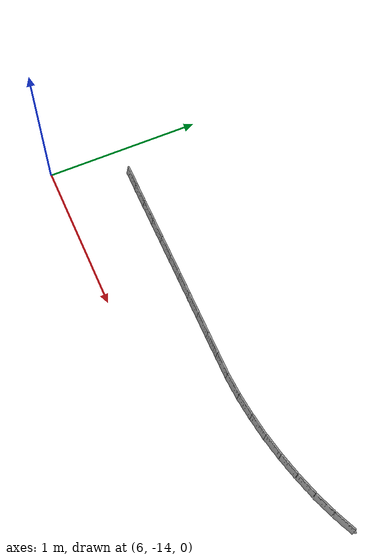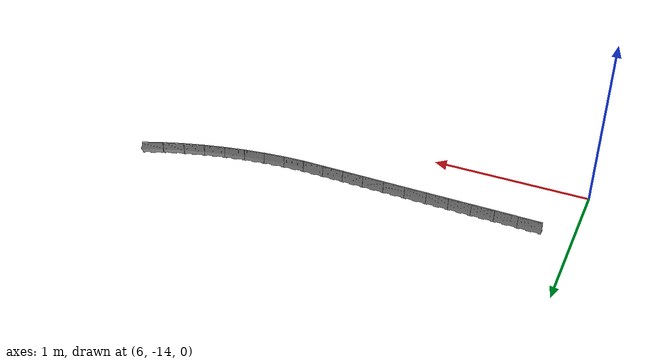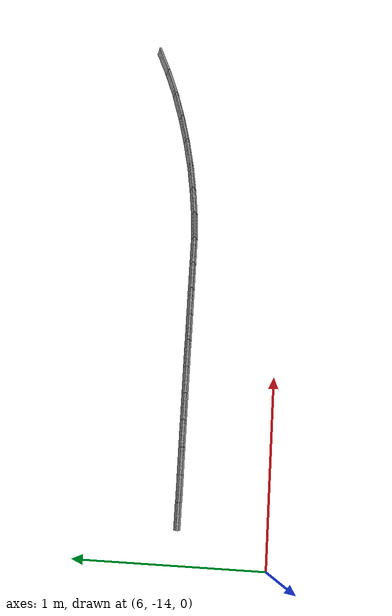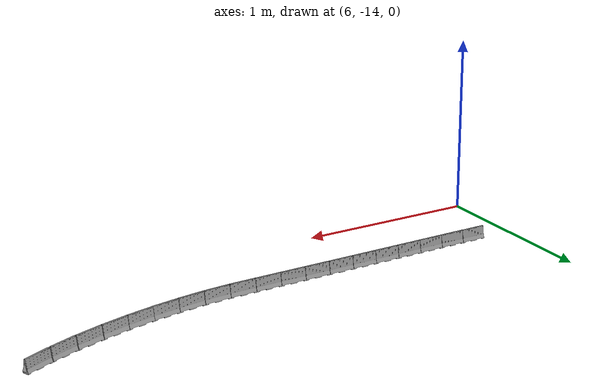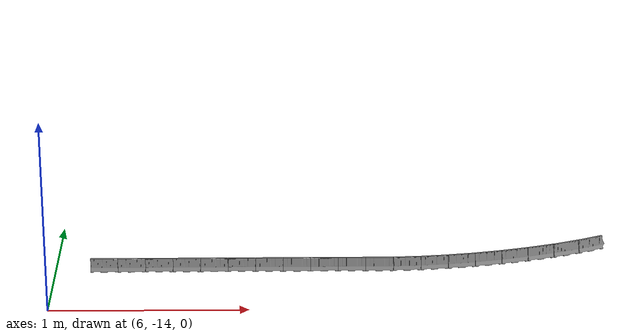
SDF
<sdf version="1.6">
 <world name="bfmc_official">
  <model name="separator_clone">
   <link name="separator::separator::link_0">
    <inertial>
     <mass>1</mass>
     <inertia>
      <ixx>0.166667</ixx>
      <ixy>0</ixy>
      <ixz>0</ixz>
      <iyy>0.166667</iyy>
      <iyz>0</iyz>
      <izz>0.166667</izz>
     </inertia>
    </inertial>
    <visual name="visual">
     <geometry><mesh><uri>model://separator/meshes/separator.dae</uri><scale>1 1 1</scale></mesh></geometry>
     <material>
      <lighting>1</lighting>
      <script><uri>file://media/materials/scripts/gazebo.material</uri><name>Gazebo/Gray</name></script>
      <shader type="vertex"><normal_map>__default__</normal_map></shader>
      <ambient>0.3 0.3 0.3 1</ambient>
      <diffuse>0.7 0.7 0.7 1</diffuse>
      <specular>0.01 0.01 0.01 1</specular>
      <emissive>0 0 0 1</emissive>
     </material>
    </visual>
    <collision name="collision">
     <geometry><mesh><uri>model://separator/meshes/separator.dae</uri><scale>1 1 1</scale></mesh></geometry>
     <surface>
      <friction>
       <ode><mu>1</mu><mu2>1</mu2><fdir1>0 0 0</fdir1><slip1>0</slip1><slip2>0</slip2></ode>
       <torsional>
        <coefficient>1</coefficient>
        <patch_radius>0</patch_radius>
        <surface_radius>0</surface_radius>
        <use_patch_radius>1</use_patch_radius>
        <ode><slip>0</slip></ode>
       </torsional>
      </friction>
      <bounce><restitution_coefficient>0</restitution_coefficient><threshold>1e+06</threshold></bounce>
      <contact>
       <collide_without_contact>0</collide_without_contact>
       <collide_without_contact_bitmask>1</collide_without_contact_bitmask>
       <collide_bitmask>1</collide_bitmask>
       <ode>
        <soft_cfm>0</soft_cfm>
        <soft_erp>0.2</soft_erp>
        <kp>1e+13</kp>
        <kd>1</kd>
        <max_vel>0.01</max_vel>
        <min_depth>0</min_depth>
       </ode>
       <bullet>
        <split_impulse>1</split_impulse>
        <split_impulse_penetration_threshold>-0.01</split_impulse_penetration_threshold>
        <soft_cfm>0</soft_cfm>
        <soft_erp>0.2</soft_erp>
        <kp>1e+13</kp>
        <kd>1</kd>
       </bullet>
      </contact>
     </surface>
    </collision>
   </link>
   <static>1</static>
   <pose>6.38806 -13.5317 0.044642 0 -0 1.57324</pose>
  </model>
  <model name="separator_clone_clone">
   <link name="separator::separator::link_0">
    <inertial>
     <mass>1</mass>
     <inertia>
      <ixx>0.166667</ixx>
      <ixy>0</ixy>
      <ixz>0</ixz>
      <iyy>0.166667</iyy>
      <iyz>0</iyz>
      <izz>0.166667</izz>
     </inertia>
    </inertial>
    <visual name="visual">
     <geometry><mesh><uri>model://separator/meshes/separator.dae</uri><scale>1 1 1</scale></mesh></geometry>
     <material>
      <lighting>1</lighting>
      <script><uri>file://media/materials/scripts/gazebo.material</uri><name>Gazebo/Gray</name></script>
      <shader type="vertex"><normal_map>__default__</normal_map></shader>
      <ambient>0.3 0.3 0.3 1</ambient>
      <diffuse>0.7 0.7 0.7 1</diffuse>
      <specular>0.01 0.01 0.01 1</specular>
      <emissive>0 0 0 1</emissive>
     </material>
    </visual>
    <collision name="collision">
     <geometry><mesh><uri>model://separator/meshes/separator.dae</uri><scale>1 1 1</scale></mesh></geometry>
     <surface>
      <friction>
       <ode><mu>1</mu><mu2>1</mu2><fdir1>0 0 0</fdir1><slip1>0</slip1><slip2>0</slip2></ode>
       <torsional>
        <coefficient>1</coefficient>
        <patch_radius>0</patch_radius>
        <surface_radius>0</surface_radius>
        <use_patch_radius>1</use_patch_radius>
        <ode><slip>0</slip></ode>
       </torsional>
      </friction>
      <bounce><restitution_coefficient>0</restitution_coefficient><threshold>1e+06</threshold></bounce>
      <contact>
       <collide_without_contact>0</collide_without_contact>
       <collide_without_contact_bitmask>1</collide_without_contact_bitmask>
       <collide_bitmask>1</collide_bitmask>
       <ode>
        <soft_cfm>0</soft_cfm>
        <soft_erp>0.2</soft_erp>
        <kp>1e+13</kp>
        <kd>1</kd>
        <max_vel>0.01</max_vel>
        <min_depth>0</min_depth>
       </ode>
       <bullet>
        <split_impulse>1</split_impulse>
        <split_impulse_penetration_threshold>-0.01</split_impulse_penetration_threshold>
        <soft_cfm>0</soft_cfm>
        <soft_erp>0.2</soft_erp>
        <kp>1e+13</kp>
        <kd>1</kd>
       </bullet>
      </contact>
     </surface>
    </collision>
   </link>
   <static>1</static>
   <pose>6.52931 -13.5311 0.044642 0 -0 1.57324</pose>
  </model>
  <model name="separator_clone_clone_clone">
   <link name="separator::separator::link_0">
    <inertial>
     <mass>1</mass>
     <inertia>
      <ixx>0.166667</ixx>
      <ixy>0</ixy>
      <ixz>0</ixz>
      <iyy>0.166667</iyy>
      <iyz>0</iyz>
      <izz>0.166667</izz>
     </inertia>
    </inertial>
    <visual name="visual">
     <geometry><mesh><uri>model://separator/meshes/separator.dae</uri><scale>1 1 1</scale></mesh></geometry>
     <material>
      <lighting>1</lighting>
      <script><uri>file://media/materials/scripts/gazebo.material</uri><name>Gazebo/Gray</name></script>
      <shader type="vertex"><normal_map>__default__</normal_map></shader>
      <ambient>0.3 0.3 0.3 1</ambient>
      <diffuse>0.7 0.7 0.7 1</diffuse>
      <specular>0.01 0.01 0.01 1</specular>
      <emissive>0 0 0 1</emissive>
     </material>
    </visual>
    <collision name="collision">
     <geometry><mesh><uri>model://separator/meshes/separator.dae</uri><scale>1 1 1</scale></mesh></geometry>
     <surface>
      <friction>
       <ode><mu>1</mu><mu2>1</mu2><fdir1>0 0 0</fdir1><slip1>0</slip1><slip2>0</slip2></ode>
       <torsional>
        <coefficient>1</coefficient>
        <patch_radius>0</patch_radius>
        <surface_radius>0</surface_radius>
        <use_patch_radius>1</use_patch_radius>
        <ode><slip>0</slip></ode>
       </torsional>
      </friction>
      <bounce><restitution_coefficient>0</restitution_coefficient><threshold>1e+06</threshold></bounce>
      <contact>
       <collide_without_contact>0</collide_without_contact>
       <collide_without_contact_bitmask>1</collide_without_contact_bitmask>
       <collide_bitmask>1</collide_bitmask>
       <ode>
        <soft_cfm>0</soft_cfm>
        <soft_erp>0.2</soft_erp>
        <kp>1e+13</kp>
        <kd>1</kd>
        <max_vel>0.01</max_vel>
        <min_depth>0</min_depth>
       </ode>
       <bullet>
        <split_impulse>1</split_impulse>
        <split_impulse_penetration_threshold>-0.01</split_impulse_penetration_threshold>
        <soft_cfm>0</soft_cfm>
        <soft_erp>0.2</soft_erp>
        <kp>1e+13</kp>
        <kd>1</kd>
       </bullet>
      </contact>
     </surface>
    </collision>
   </link>
   <static>1</static>
   <pose>6.67069 -13.5307 0.044642 0 -0 1.57324</pose>
  </model>
  <model name="separator_clone_clone_clone_clone">
   <link name="separator::separator::link_0">
    <inertial>
     <mass>1</mass>
     <inertia>
      <ixx>0.166667</ixx>
      <ixy>0</ixy>
      <ixz>0</ixz>
      <iyy>0.166667</iyy>
      <iyz>0</iyz>
      <izz>0.166667</izz>
     </inertia>
    </inertial>
    <visual name="visual">
     <geometry><mesh><uri>model://separator/meshes/separator.dae</uri><scale>1 1 1</scale></mesh></geometry>
     <material>
      <lighting>1</lighting>
      <script><uri>file://media/materials/scripts/gazebo.material</uri><name>Gazebo/Gray</name></script>
      <shader type="vertex"><normal_map>__default__</normal_map></shader>
      <ambient>0.3 0.3 0.3 1</ambient>
      <diffuse>0.7 0.7 0.7 1</diffuse>
      <specular>0.01 0.01 0.01 1</specular>
      <emissive>0 0 0 1</emissive>
     </material>
    </visual>
    <collision name="collision">
     <geometry><mesh><uri>model://separator/meshes/separator.dae</uri><scale>1 1 1</scale></mesh></geometry>
     <surface>
      <friction>
       <ode><mu>1</mu><mu2>1</mu2><fdir1>0 0 0</fdir1><slip1>0</slip1><slip2>0</slip2></ode>
       <torsional>
        <coefficient>1</coefficient>
        <patch_radius>0</patch_radius>
        <surface_radius>0</surface_radius>
        <use_patch_radius>1</use_patch_radius>
        <ode><slip>0</slip></ode>
       </torsional>
      </friction>
      <bounce><restitution_coefficient>0</restitution_coefficient><threshold>1e+06</threshold></bounce>
      <contact>
       <collide_without_contact>0</collide_without_contact>
       <collide_without_contact_bitmask>1</collide_without_contact_bitmask>
       <collide_bitmask>1</collide_bitmask>
       <ode>
        <soft_cfm>0</soft_cfm>
        <soft_erp>0.2</soft_erp>
        <kp>1e+13</kp>
        <kd>1</kd>
        <max_vel>0.01</max_vel>
        <min_depth>0</min_depth>
       </ode>
       <bullet>
        <split_impulse>1</split_impulse>
        <split_impulse_penetration_threshold>-0.01</split_impulse_penetration_threshold>
        <soft_cfm>0</soft_cfm>
        <soft_erp>0.2</soft_erp>
        <kp>1e+13</kp>
        <kd>1</kd>
       </bullet>
      </contact>
     </surface>
    </collision>
   </link>
   <static>1</static>
   <pose>6.81255 -13.5305 0.044642 0 -0 1.57324</pose>
  </model>
  <model name="separator_clone_clone_clone_clone_clone">
   <link name="separator::separator::link_0">
    <inertial>
     <mass>1</mass>
     <inertia>
      <ixx>0.166667</ixx>
      <ixy>0</ixy>
      <ixz>0</ixz>
      <iyy>0.166667</iyy>
      <iyz>0</iyz>
      <izz>0.166667</izz>
     </inertia>
    </inertial>
    <visual name="visual">
     <geometry><mesh><uri>model://separator/meshes/separator.dae</uri><scale>1 1 1</scale></mesh></geometry>
     <material>
      <lighting>1</lighting>
      <script><uri>file://media/materials/scripts/gazebo.material</uri><name>Gazebo/Gray</name></script>
      <shader type="vertex"><normal_map>__default__</normal_map></shader>
      <ambient>0.3 0.3 0.3 1</ambient>
      <diffuse>0.7 0.7 0.7 1</diffuse>
      <specular>0.01 0.01 0.01 1</specular>
      <emissive>0 0 0 1</emissive>
     </material>
    </visual>
    <collision name="collision">
     <geometry><mesh><uri>model://separator/meshes/separator.dae</uri><scale>1 1 1</scale></mesh></geometry>
     <surface>
      <friction>
       <ode><mu>1</mu><mu2>1</mu2><fdir1>0 0 0</fdir1><slip1>0</slip1><slip2>0</slip2></ode>
       <torsional>
        <coefficient>1</coefficient>
        <patch_radius>0</patch_radius>
        <surface_radius>0</surface_radius>
        <use_patch_radius>1</use_patch_radius>
        <ode><slip>0</slip></ode>
       </torsional>
      </friction>
      <bounce><restitution_coefficient>0</restitution_coefficient><threshold>1e+06</threshold></bounce>
      <contact>
       <collide_without_contact>0</collide_without_contact>
       <collide_without_contact_bitmask>1</collide_without_contact_bitmask>
       <collide_bitmask>1</collide_bitmask>
       <ode>
        <soft_cfm>0</soft_cfm>
        <soft_erp>0.2</soft_erp>
        <kp>1e+13</kp>
        <kd>1</kd>
        <max_vel>0.01</max_vel>
        <min_depth>0</min_depth>
       </ode>
       <bullet>
        <split_impulse>1</split_impulse>
        <split_impulse_penetration_threshold>-0.01</split_impulse_penetration_threshold>
        <soft_cfm>0</soft_cfm>
        <soft_erp>0.2</soft_erp>
        <kp>1e+13</kp>
        <kd>1</kd>
       </bullet>
      </contact>
     </surface>
    </collision>
   </link>
   <static>1</static>
   <pose>6.95349 -13.5302 0.044642 0 -0 1.57324</pose>
  </model>
  <model name="separator_clone_clone_clone_clone_clone_clone">
   <link name="separator::separator::link_0">
    <inertial>
     <mass>1</mass>
     <inertia>
      <ixx>0.166667</ixx>
      <ixy>0</ixy>
      <ixz>0</ixz>
      <iyy>0.166667</iyy>
      <iyz>0</iyz>
      <izz>0.166667</izz>
     </inertia>
    </inertial>
    <visual name="visual">
     <geometry><mesh><uri>model://separator/meshes/separator.dae</uri><scale>1 1 1</scale></mesh></geometry>
     <material>
      <lighting>1</lighting>
      <script><uri>file://media/materials/scripts/gazebo.material</uri><name>Gazebo/Gray</name></script>
      <shader type="vertex"><normal_map>__default__</normal_map></shader>
      <ambient>0.3 0.3 0.3 1</ambient>
      <diffuse>0.7 0.7 0.7 1</diffuse>
      <specular>0.01 0.01 0.01 1</specular>
      <emissive>0 0 0 1</emissive>
     </material>
    </visual>
    <collision name="collision">
     <geometry><mesh><uri>model://separator/meshes/separator.dae</uri><scale>1 1 1</scale></mesh></geometry>
     <surface>
      <friction>
       <ode><mu>1</mu><mu2>1</mu2><fdir1>0 0 0</fdir1><slip1>0</slip1><slip2>0</slip2></ode>
       <torsional>
        <coefficient>1</coefficient>
        <patch_radius>0</patch_radius>
        <surface_radius>0</surface_radius>
        <use_patch_radius>1</use_patch_radius>
        <ode><slip>0</slip></ode>
       </torsional>
      </friction>
      <bounce><restitution_coefficient>0</restitution_coefficient><threshold>1e+06</threshold></bounce>
      <contact>
       <collide_without_contact>0</collide_without_contact>
       <collide_without_contact_bitmask>1</collide_without_contact_bitmask>
       <collide_bitmask>1</collide_bitmask>
       <ode>
        <soft_cfm>0</soft_cfm>
        <soft_erp>0.2</soft_erp>
        <kp>1e+13</kp>
        <kd>1</kd>
        <max_vel>0.01</max_vel>
        <min_depth>0</min_depth>
       </ode>
       <bullet>
        <split_impulse>1</split_impulse>
        <split_impulse_penetration_threshold>-0.01</split_impulse_penetration_threshold>
        <soft_cfm>0</soft_cfm>
        <soft_erp>0.2</soft_erp>
        <kp>1e+13</kp>
        <kd>1</kd>
       </bullet>
      </contact>
     </surface>
    </collision>
   </link>
   <static>1</static>
   <pose>7.09476 -13.5299 0.044642 0 -0 1.57324</pose>
  </model>
  <model name="separator_clone_clone_clone_clone_clone_clone_clone">
   <link name="separator::separator::link_0">
    <inertial>
     <mass>1</mass>
     <inertia>
      <ixx>0.166667</ixx>
      <ixy>0</ixy>
      <ixz>0</ixz>
      <iyy>0.166667</iyy>
      <iyz>0</iyz>
      <izz>0.166667</izz>
     </inertia>
    </inertial>
    <visual name="visual">
     <geometry><mesh><uri>model://separator/meshes/separator.dae</uri><scale>1 1 1</scale></mesh></geometry>
     <material>
      <lighting>1</lighting>
      <script><uri>file://media/materials/scripts/gazebo.material</uri><name>Gazebo/Gray</name></script>
      <shader type="vertex"><normal_map>__default__</normal_map></shader>
      <ambient>0.3 0.3 0.3 1</ambient>
      <diffuse>0.7 0.7 0.7 1</diffuse>
      <specular>0.01 0.01 0.01 1</specular>
      <emissive>0 0 0 1</emissive>
     </material>
    </visual>
    <collision name="collision">
     <geometry><mesh><uri>model://separator/meshes/separator.dae</uri><scale>1 1 1</scale></mesh></geometry>
     <surface>
      <friction>
       <ode><mu>1</mu><mu2>1</mu2><fdir1>0 0 0</fdir1><slip1>0</slip1><slip2>0</slip2></ode>
       <torsional>
        <coefficient>1</coefficient>
        <patch_radius>0</patch_radius>
        <surface_radius>0</surface_radius>
        <use_patch_radius>1</use_patch_radius>
        <ode><slip>0</slip></ode>
       </torsional>
      </friction>
      <bounce><restitution_coefficient>0</restitution_coefficient><threshold>1e+06</threshold></bounce>
      <contact>
       <collide_without_contact>0</collide_without_contact>
       <collide_without_contact_bitmask>1</collide_without_contact_bitmask>
       <collide_bitmask>1</collide_bitmask>
       <ode>
        <soft_cfm>0</soft_cfm>
        <soft_erp>0.2</soft_erp>
        <kp>1e+13</kp>
        <kd>1</kd>
        <max_vel>0.01</max_vel>
        <min_depth>0</min_depth>
       </ode>
       <bullet>
        <split_impulse>1</split_impulse>
        <split_impulse_penetration_threshold>-0.01</split_impulse_penetration_threshold>
        <soft_cfm>0</soft_cfm>
        <soft_erp>0.2</soft_erp>
        <kp>1e+13</kp>
        <kd>1</kd>
       </bullet>
      </contact>
     </surface>
    </collision>
   </link>
   <static>1</static>
   <pose>7.23664 -13.5303 0.044642 0 -0 1.57324</pose>
  </model>
  <model name="separator_clone_clone_clone_clone_clone_clone_clone_clone">
   <link name="separator::separator::link_0">
    <inertial>
     <mass>1</mass>
     <inertia>
      <ixx>0.166667</ixx>
      <ixy>0</ixy>
      <ixz>0</ixz>
      <iyy>0.166667</iyy>
      <iyz>0</iyz>
      <izz>0.166667</izz>
     </inertia>
    </inertial>
    <visual name="visual">
     <geometry><mesh><uri>model://separator/meshes/separator.dae</uri><scale>1 1 1</scale></mesh></geometry>
     <material>
      <lighting>1</lighting>
      <script><uri>file://media/materials/scripts/gazebo.material</uri><name>Gazebo/Gray</name></script>
      <shader type="vertex"><normal_map>__default__</normal_map></shader>
      <ambient>0.3 0.3 0.3 1</ambient>
      <diffuse>0.7 0.7 0.7 1</diffuse>
      <specular>0.01 0.01 0.01 1</specular>
      <emissive>0 0 0 1</emissive>
     </material>
    </visual>
    <collision name="collision">
     <geometry><mesh><uri>model://separator/meshes/separator.dae</uri><scale>1 1 1</scale></mesh></geometry>
     <surface>
      <friction>
       <ode><mu>1</mu><mu2>1</mu2><fdir1>0 0 0</fdir1><slip1>0</slip1><slip2>0</slip2></ode>
       <torsional>
        <coefficient>1</coefficient>
        <patch_radius>0</patch_radius>
        <surface_radius>0</surface_radius>
        <use_patch_radius>1</use_patch_radius>
        <ode><slip>0</slip></ode>
       </torsional>
      </friction>
      <bounce><restitution_coefficient>0</restitution_coefficient><threshold>1e+06</threshold></bounce>
      <contact>
       <collide_without_contact>0</collide_without_contact>
       <collide_without_contact_bitmask>1</collide_without_contact_bitmask>
       <collide_bitmask>1</collide_bitmask>
       <ode>
        <soft_cfm>0</soft_cfm>
        <soft_erp>0.2</soft_erp>
        <kp>1e+13</kp>
        <kd>1</kd>
        <max_vel>0.01</max_vel>
        <min_depth>0</min_depth>
       </ode>
       <bullet>
        <split_impulse>1</split_impulse>
        <split_impulse_penetration_threshold>-0.01</split_impulse_penetration_threshold>
        <soft_cfm>0</soft_cfm>
        <soft_erp>0.2</soft_erp>
        <kp>1e+13</kp>
        <kd>1</kd>
       </bullet>
      </contact>
     </surface>
    </collision>
   </link>
   <static>1</static>
   <pose>7.37782 -13.5302 0.044642 0 -0 1.57324</pose>
  </model>
  <model name="separator_clone_clone_clone_clone_clone_clone_clone_clone_0">
   <link name="separator::separator::link_0">
    <inertial>
     <mass>1</mass>
     <inertia>
      <ixx>0.166667</ixx>
      <ixy>0</ixy>
      <ixz>0</ixz>
      <iyy>0.166667</iyy>
      <iyz>0</iyz>
      <izz>0.166667</izz>
     </inertia>
    </inertial>
    <visual name="visual">
     <geometry><mesh><uri>model://separator/meshes/separator.dae</uri><scale>1 1 1</scale></mesh></geometry>
     <material>
      <lighting>1</lighting>
      <script><uri>file://media/materials/scripts/gazebo.material</uri><name>Gazebo/Gray</name></script>
      <shader type="vertex"><normal_map>__default__</normal_map></shader>
      <ambient>0.3 0.3 0.3 1</ambient>
      <diffuse>0.7 0.7 0.7 1</diffuse>
      <specular>0.01 0.01 0.01 1</specular>
      <emissive>0 0 0 1</emissive>
     </material>
    </visual>
    <collision name="collision">
     <geometry><mesh><uri>model://separator/meshes/separator.dae</uri><scale>1 1 1</scale></mesh></geometry>
     <surface>
      <friction>
       <ode><mu>1</mu><mu2>1</mu2><fdir1>0 0 0</fdir1><slip1>0</slip1><slip2>0</slip2></ode>
       <torsional>
        <coefficient>1</coefficient>
        <patch_radius>0</patch_radius>
        <surface_radius>0</surface_radius>
        <use_patch_radius>1</use_patch_radius>
        <ode><slip>0</slip></ode>
       </torsional>
      </friction>
      <bounce><restitution_coefficient>0</restitution_coefficient><threshold>1e+06</threshold></bounce>
      <contact>
       <collide_without_contact>0</collide_without_contact>
       <collide_without_contact_bitmask>1</collide_without_contact_bitmask>
       <collide_bitmask>1</collide_bitmask>
       <ode>
        <soft_cfm>0</soft_cfm>
        <soft_erp>0.2</soft_erp>
        <kp>1e+13</kp>
        <kd>1</kd>
        <max_vel>0.01</max_vel>
        <min_depth>0</min_depth>
       </ode>
       <bullet>
        <split_impulse>1</split_impulse>
        <split_impulse_penetration_threshold>-0.01</split_impulse_penetration_threshold>
        <soft_cfm>0</soft_cfm>
        <soft_erp>0.2</soft_erp>
        <kp>1e+13</kp>
        <kd>1</kd>
       </bullet>
      </contact>
     </surface>
    </collision>
   </link>
   <static>1</static>
   <pose>7.51909 -13.5303 0.044642 0 -0 1.57324</pose>
  </model>
  <model name="separator_clone_clone_clone_clone_clone_clone_clone_clone_1">
   <link name="separator::separator::link_0">
    <inertial>
     <mass>1</mass>
     <inertia>
      <ixx>0.166667</ixx>
      <ixy>0</ixy>
      <ixz>0</ixz>
      <iyy>0.166667</iyy>
      <iyz>0</iyz>
      <izz>0.166667</izz>
     </inertia>
    </inertial>
    <visual name="visual">
     <geometry><mesh><uri>model://separator/meshes/separator.dae</uri><scale>1 1 1</scale></mesh></geometry>
     <material>
      <lighting>1</lighting>
      <script><uri>file://media/materials/scripts/gazebo.material</uri><name>Gazebo/Gray</name></script>
      <shader type="vertex"><normal_map>__default__</normal_map></shader>
      <ambient>0.3 0.3 0.3 1</ambient>
      <diffuse>0.7 0.7 0.7 1</diffuse>
      <specular>0.01 0.01 0.01 1</specular>
      <emissive>0 0 0 1</emissive>
     </material>
    </visual>
    <collision name="collision">
     <geometry><mesh><uri>model://separator/meshes/separator.dae</uri><scale>1 1 1</scale></mesh></geometry>
     <surface>
      <friction>
       <ode><mu>1</mu><mu2>1</mu2><fdir1>0 0 0</fdir1><slip1>0</slip1><slip2>0</slip2></ode>
       <torsional>
        <coefficient>1</coefficient>
        <patch_radius>0</patch_radius>
        <surface_radius>0</surface_radius>
        <use_patch_radius>1</use_patch_radius>
        <ode><slip>0</slip></ode>
       </torsional>
      </friction>
      <bounce><restitution_coefficient>0</restitution_coefficient><threshold>1e+06</threshold></bounce>
      <contact>
       <collide_without_contact>0</collide_without_contact>
       <collide_without_contact_bitmask>1</collide_without_contact_bitmask>
       <collide_bitmask>1</collide_bitmask>
       <ode>
        <soft_cfm>0</soft_cfm>
        <soft_erp>0.2</soft_erp>
        <kp>1e+13</kp>
        <kd>1</kd>
        <max_vel>0.01</max_vel>
        <min_depth>0</min_depth>
       </ode>
       <bullet>
        <split_impulse>1</split_impulse>
        <split_impulse_penetration_threshold>-0.01</split_impulse_penetration_threshold>
        <soft_cfm>0</soft_cfm>
        <soft_erp>0.2</soft_erp>
        <kp>1e+13</kp>
        <kd>1</kd>
       </bullet>
      </contact>
     </surface>
    </collision>
   </link>
   <static>1</static>
   <pose>7.66047 -13.5302 0.044642 0 -0 1.57324</pose>
  </model>
  <model name="separator_clone_clone_clone_clone_clone_clone_clone_clone_2">
   <link name="separator::separator::link_0">
    <inertial>
     <mass>1</mass>
     <inertia>
      <ixx>0.166667</ixx>
      <ixy>0</ixy>
      <ixz>0</ixz>
      <iyy>0.166667</iyy>
      <iyz>0</iyz>
      <izz>0.166667</izz>
     </inertia>
    </inertial>
    <visual name="visual">
     <geometry><mesh><uri>model://separator/meshes/separator.dae</uri><scale>1 1 1</scale></mesh></geometry>
     <material>
      <lighting>1</lighting>
      <script><uri>file://media/materials/scripts/gazebo.material</uri><name>Gazebo/Gray</name></script>
      <shader type="vertex"><normal_map>__default__</normal_map></shader>
      <ambient>0.3 0.3 0.3 1</ambient>
      <diffuse>0.7 0.7 0.7 1</diffuse>
      <specular>0.01 0.01 0.01 1</specular>
      <emissive>0 0 0 1</emissive>
     </material>
    </visual>
    <collision name="collision">
     <geometry><mesh><uri>model://separator/meshes/separator.dae</uri><scale>1 1 1</scale></mesh></geometry>
     <surface>
      <friction>
       <ode><mu>1</mu><mu2>1</mu2><fdir1>0 0 0</fdir1><slip1>0</slip1><slip2>0</slip2></ode>
       <torsional>
        <coefficient>1</coefficient>
        <patch_radius>0</patch_radius>
        <surface_radius>0</surface_radius>
        <use_patch_radius>1</use_patch_radius>
        <ode><slip>0</slip></ode>
       </torsional>
      </friction>
      <bounce><restitution_coefficient>0</restitution_coefficient><threshold>1e+06</threshold></bounce>
      <contact>
       <collide_without_contact>0</collide_without_contact>
       <collide_without_contact_bitmask>1</collide_without_contact_bitmask>
       <collide_bitmask>1</collide_bitmask>
       <ode>
        <soft_cfm>0</soft_cfm>
        <soft_erp>0.2</soft_erp>
        <kp>1e+13</kp>
        <kd>1</kd>
        <max_vel>0.01</max_vel>
        <min_depth>0</min_depth>
       </ode>
       <bullet>
        <split_impulse>1</split_impulse>
        <split_impulse_penetration_threshold>-0.01</split_impulse_penetration_threshold>
        <soft_cfm>0</soft_cfm>
        <soft_erp>0.2</soft_erp>
        <kp>1e+13</kp>
        <kd>1</kd>
       </bullet>
      </contact>
     </surface>
    </collision>
   </link>
   <static>1</static>
   <pose>7.80241 -13.5261 0.044642 0 -0 1.62929</pose>
  </model>
  <model name="separator_clone_clone_clone_clone_clone_clone_clone_clone_2_clone">
   <link name="separator::separator::link_0">
    <inertial>
     <mass>1</mass>
     <inertia>
      <ixx>0.166667</ixx>
      <ixy>0</ixy>
      <ixz>0</ixz>
      <iyy>0.166667</iyy>
      <iyz>0</iyz>
      <izz>0.166667</izz>
     </inertia>
    </inertial>
    <visual name="visual">
     <geometry><mesh><uri>model://separator/meshes/separator.dae</uri><scale>1 1 1</scale></mesh></geometry>
     <material>
      <lighting>1</lighting>
      <script><uri>file://media/materials/scripts/gazebo.material</uri><name>Gazebo/Gray</name></script>
      <shader type="vertex"><normal_map>__default__</normal_map></shader>
      <ambient>0.3 0.3 0.3 1</ambient>
      <diffuse>0.7 0.7 0.7 1</diffuse>
      <specular>0.01 0.01 0.01 1</specular>
      <emissive>0 0 0 1</emissive>
     </material>
    </visual>
    <collision name="collision">
     <geometry><mesh><uri>model://separator/meshes/separator.dae</uri><scale>1 1 1</scale></mesh></geometry>
     <surface>
      <friction>
       <ode><mu>1</mu><mu2>1</mu2><fdir1>0 0 0</fdir1><slip1>0</slip1><slip2>0</slip2></ode>
       <torsional>
        <coefficient>1</coefficient>
        <patch_radius>0</patch_radius>
        <surface_radius>0</surface_radius>
        <use_patch_radius>1</use_patch_radius>
        <ode><slip>0</slip></ode>
       </torsional>
      </friction>
      <bounce><restitution_coefficient>0</restitution_coefficient><threshold>1e+06</threshold></bounce>
      <contact>
       <collide_without_contact>0</collide_without_contact>
       <collide_without_contact_bitmask>1</collide_without_contact_bitmask>
       <collide_bitmask>1</collide_bitmask>
       <ode>
        <soft_cfm>0</soft_cfm>
        <soft_erp>0.2</soft_erp>
        <kp>1e+13</kp>
        <kd>1</kd>
        <max_vel>0.01</max_vel>
        <min_depth>0</min_depth>
       </ode>
       <bullet>
        <split_impulse>1</split_impulse>
        <split_impulse_penetration_threshold>-0.01</split_impulse_penetration_threshold>
        <soft_cfm>0</soft_cfm>
        <soft_erp>0.2</soft_erp>
        <kp>1e+13</kp>
        <kd>1</kd>
       </bullet>
      </contact>
     </surface>
    </collision>
   </link>
   <static>1</static>
   <pose>7.94451 -13.5142 0.044642 0 -0 1.68163</pose>
  </model>
  <model name="separator_clone_clone_clone_clone_clone_clone_clone_clone_2_clone_clone">
   <link name="separator::separator::link_0">
    <inertial>
     <mass>1</mass>
     <inertia>
      <ixx>0.166667</ixx>
      <ixy>0</ixy>
      <ixz>0</ixz>
      <iyy>0.166667</iyy>
      <iyz>0</iyz>
      <izz>0.166667</izz>
     </inertia>
    </inertial>
    <visual name="visual">
     <geometry><mesh><uri>model://separator/meshes/separator.dae</uri><scale>1 1 1</scale></mesh></geometry>
     <material>
      <lighting>1</lighting>
      <script><uri>file://media/materials/scripts/gazebo.material</uri><name>Gazebo/Gray</name></script>
      <shader type="vertex"><normal_map>__default__</normal_map></shader>
      <ambient>0.3 0.3 0.3 1</ambient>
      <diffuse>0.7 0.7 0.7 1</diffuse>
      <specular>0.01 0.01 0.01 1</specular>
      <emissive>0 0 0 1</emissive>
     </material>
    </visual>
    <collision name="collision">
     <geometry><mesh><uri>model://separator/meshes/separator.dae</uri><scale>1 1 1</scale></mesh></geometry>
     <surface>
      <friction>
       <ode><mu>1</mu><mu2>1</mu2><fdir1>0 0 0</fdir1><slip1>0</slip1><slip2>0</slip2></ode>
       <torsional>
        <coefficient>1</coefficient>
        <patch_radius>0</patch_radius>
        <surface_radius>0</surface_radius>
        <use_patch_radius>1</use_patch_radius>
        <ode><slip>0</slip></ode>
       </torsional>
      </friction>
      <bounce><restitution_coefficient>0</restitution_coefficient><threshold>1e+06</threshold></bounce>
      <contact>
       <collide_without_contact>0</collide_without_contact>
       <collide_without_contact_bitmask>1</collide_without_contact_bitmask>
       <collide_bitmask>1</collide_bitmask>
       <ode>
        <soft_cfm>0</soft_cfm>
        <soft_erp>0.2</soft_erp>
        <kp>1e+13</kp>
        <kd>1</kd>
        <max_vel>0.01</max_vel>
        <min_depth>0</min_depth>
       </ode>
       <bullet>
        <split_impulse>1</split_impulse>
        <split_impulse_penetration_threshold>-0.01</split_impulse_penetration_threshold>
        <soft_cfm>0</soft_cfm>
        <soft_erp>0.2</soft_erp>
        <kp>1e+13</kp>
        <kd>1</kd>
       </bullet>
      </contact>
     </surface>
    </collision>
   </link>
   <static>1</static>
   <pose>8.0853 -13.4952 0.044642 0 -0 1.71814</pose>
  </model>
  <model name="separator_clone_clone_clone_clone_clone_clone_clone_clone_2_clone_clone_clone">
   <link name="separator::separator::link_0">
    <inertial>
     <mass>1</mass>
     <inertia>
      <ixx>0.166667</ixx>
      <ixy>0</ixy>
      <ixz>0</ixz>
      <iyy>0.166667</iyy>
      <iyz>0</iyz>
      <izz>0.166667</izz>
     </inertia>
    </inertial>
    <visual name="visual">
     <geometry><mesh><uri>model://separator/meshes/separator.dae</uri><scale>1 1 1</scale></mesh></geometry>
     <material>
      <lighting>1</lighting>
      <script><uri>file://media/materials/scripts/gazebo.material</uri><name>Gazebo/Gray</name></script>
      <shader type="vertex"><normal_map>__default__</normal_map></shader>
      <ambient>0.3 0.3 0.3 1</ambient>
      <diffuse>0.7 0.7 0.7 1</diffuse>
      <specular>0.01 0.01 0.01 1</specular>
      <emissive>0 0 0 1</emissive>
     </material>
    </visual>
    <collision name="collision">
     <geometry><mesh><uri>model://separator/meshes/separator.dae</uri><scale>1 1 1</scale></mesh></geometry>
     <surface>
      <friction>
       <ode><mu>1</mu><mu2>1</mu2><fdir1>0 0 0</fdir1><slip1>0</slip1><slip2>0</slip2></ode>
       <torsional>
        <coefficient>1</coefficient>
        <patch_radius>0</patch_radius>
        <surface_radius>0</surface_radius>
        <use_patch_radius>1</use_patch_radius>
        <ode><slip>0</slip></ode>
       </torsional>
      </friction>
      <bounce><restitution_coefficient>0</restitution_coefficient><threshold>1e+06</threshold></bounce>
      <contact>
       <collide_without_contact>0</collide_without_contact>
       <collide_without_contact_bitmask>1</collide_without_contact_bitmask>
       <collide_bitmask>1</collide_bitmask>
       <ode>
        <soft_cfm>0</soft_cfm>
        <soft_erp>0.2</soft_erp>
        <kp>1e+13</kp>
        <kd>1</kd>
        <max_vel>0.01</max_vel>
        <min_depth>0</min_depth>
       </ode>
       <bullet>
        <split_impulse>1</split_impulse>
        <split_impulse_penetration_threshold>-0.01</split_impulse_penetration_threshold>
        <soft_cfm>0</soft_cfm>
        <soft_erp>0.2</soft_erp>
        <kp>1e+13</kp>
        <kd>1</kd>
       </bullet>
      </contact>
     </surface>
    </collision>
   </link>
   <static>1</static>
   <pose>8.22385 -13.4698 0.044642 0 -0 1.77492</pose>
  </model>
  <model name="separator_clone_clone_clone_clone_clone_clone_clone_clone_2_clone_clone_clone_clone">
   <link name="separator::separator::link_0">
    <inertial>
     <mass>1</mass>
     <inertia>
      <ixx>0.166667</ixx>
      <ixy>0</ixy>
      <ixz>0</ixz>
      <iyy>0.166667</iyy>
      <iyz>0</iyz>
      <izz>0.166667</izz>
     </inertia>
    </inertial>
    <visual name="visual">
     <geometry><mesh><uri>model://separator/meshes/separator.dae</uri><scale>1 1 1</scale></mesh></geometry>
     <material>
      <lighting>1</lighting>
      <script><uri>file://media/materials/scripts/gazebo.material</uri><name>Gazebo/Gray</name></script>
      <shader type="vertex"><normal_map>__default__</normal_map></shader>
      <ambient>0.3 0.3 0.3 1</ambient>
      <diffuse>0.7 0.7 0.7 1</diffuse>
      <specular>0.01 0.01 0.01 1</specular>
      <emissive>0 0 0 1</emissive>
     </material>
    </visual>
    <collision name="collision">
     <geometry><mesh><uri>model://separator/meshes/separator.dae</uri><scale>1 1 1</scale></mesh></geometry>
     <surface>
      <friction>
       <ode><mu>1</mu><mu2>1</mu2><fdir1>0 0 0</fdir1><slip1>0</slip1><slip2>0</slip2></ode>
       <torsional>
        <coefficient>1</coefficient>
        <patch_radius>0</patch_radius>
        <surface_radius>0</surface_radius>
        <use_patch_radius>1</use_patch_radius>
        <ode><slip>0</slip></ode>
       </torsional>
      </friction>
      <bounce><restitution_coefficient>0</restitution_coefficient><threshold>1e+06</threshold></bounce>
      <contact>
       <collide_without_contact>0</collide_without_contact>
       <collide_without_contact_bitmask>1</collide_without_contact_bitmask>
       <collide_bitmask>1</collide_bitmask>
       <ode>
        <soft_cfm>0</soft_cfm>
        <soft_erp>0.2</soft_erp>
        <kp>1e+13</kp>
        <kd>1</kd>
        <max_vel>0.01</max_vel>
        <min_depth>0</min_depth>
       </ode>
       <bullet>
        <split_impulse>1</split_impulse>
        <split_impulse_penetration_threshold>-0.01</split_impulse_penetration_threshold>
        <soft_cfm>0</soft_cfm>
        <soft_erp>0.2</soft_erp>
        <kp>1e+13</kp>
        <kd>1</kd>
       </bullet>
      </contact>
     </surface>
    </collision>
   </link>
   <static>1</static>
   <pose>8.36199 -13.4377 0.044642 0 -0 1.82339</pose>
  </model>
  <model name="separator_clone_clone_clone_clone_clone_clone_clone_clone_2_clone_clone_clone_clone_clone">
   <link name="separator::separator::link_0">
    <inertial>
     <mass>1</mass>
     <inertia>
      <ixx>0.166667</ixx>
      <ixy>0</ixy>
      <ixz>0</ixz>
      <iyy>0.166667</iyy>
      <iyz>0</iyz>
      <izz>0.166667</izz>
     </inertia>
    </inertial>
    <visual name="visual">
     <geometry><mesh><uri>model://separator/meshes/separator.dae</uri><scale>1 1 1</scale></mesh></geometry>
     <material>
      <lighting>1</lighting>
      <script><uri>file://media/materials/scripts/gazebo.material</uri><name>Gazebo/Gray</name></script>
      <shader type="vertex"><normal_map>__default__</normal_map></shader>
      <ambient>0.3 0.3 0.3 1</ambient>
      <diffuse>0.7 0.7 0.7 1</diffuse>
      <specular>0.01 0.01 0.01 1</specular>
      <emissive>0 0 0 1</emissive>
     </material>
    </visual>
    <collision name="collision">
     <geometry><mesh><uri>model://separator/meshes/separator.dae</uri><scale>1 1 1</scale></mesh></geometry>
     <surface>
      <friction>
       <ode><mu>1</mu><mu2>1</mu2><fdir1>0 0 0</fdir1><slip1>0</slip1><slip2>0</slip2></ode>
       <torsional>
        <coefficient>1</coefficient>
        <patch_radius>0</patch_radius>
        <surface_radius>0</surface_radius>
        <use_patch_radius>1</use_patch_radius>
        <ode><slip>0</slip></ode>
       </torsional>
      </friction>
      <bounce><restitution_coefficient>0</restitution_coefficient><threshold>1e+06</threshold></bounce>
      <contact>
       <collide_without_contact>0</collide_without_contact>
       <collide_without_contact_bitmask>1</collide_without_contact_bitmask>
       <collide_bitmask>1</collide_bitmask>
       <ode>
        <soft_cfm>0</soft_cfm>
        <soft_erp>0.2</soft_erp>
        <kp>1e+13</kp>
        <kd>1</kd>
        <max_vel>0.01</max_vel>
        <min_depth>0</min_depth>
       </ode>
       <bullet>
        <split_impulse>1</split_impulse>
        <split_impulse_penetration_threshold>-0.01</split_impulse_penetration_threshold>
        <soft_cfm>0</soft_cfm>
        <soft_erp>0.2</soft_erp>
        <kp>1e+13</kp>
        <kd>1</kd>
       </bullet>
      </contact>
     </surface>
    </collision>
   </link>
   <static>1</static>
   <pose>8.49966 -13.3986 0.044642 0 -0 1.87376</pose>
  </model>
  <model name="separator_clone_clone_clone_clone_clone_clone_clone_clone_2_clone_clone_clone_clone_clone_clone">
   <link name="separator::separator::link_0">
    <inertial>
     <mass>1</mass>
     <inertia>
      <ixx>0.166667</ixx>
      <ixy>0</ixy>
      <ixz>0</ixz>
      <iyy>0.166667</iyy>
      <iyz>0</iyz>
      <izz>0.166667</izz>
     </inertia>
    </inertial>
    <visual name="visual">
     <geometry><mesh><uri>model://separator/meshes/separator.dae</uri><scale>1 1 1</scale></mesh></geometry>
     <material>
      <lighting>1</lighting>
      <script><uri>file://media/materials/scripts/gazebo.material</uri><name>Gazebo/Gray</name></script>
      <shader type="vertex"><normal_map>__default__</normal_map></shader>
      <ambient>0.3 0.3 0.3 1</ambient>
      <diffuse>0.7 0.7 0.7 1</diffuse>
      <specular>0.01 0.01 0.01 1</specular>
      <emissive>0 0 0 1</emissive>
     </material>
    </visual>
    <collision name="collision">
     <geometry><mesh><uri>model://separator/meshes/separator.dae</uri><scale>1 1 1</scale></mesh></geometry>
     <surface>
      <friction>
       <ode><mu>1</mu><mu2>1</mu2><fdir1>0 0 0</fdir1><slip1>0</slip1><slip2>0</slip2></ode>
       <torsional>
        <coefficient>1</coefficient>
        <patch_radius>0</patch_radius>
        <surface_radius>0</surface_radius>
        <use_patch_radius>1</use_patch_radius>
        <ode><slip>0</slip></ode>
       </torsional>
      </friction>
      <bounce><restitution_coefficient>0</restitution_coefficient><threshold>1e+06</threshold></bounce>
      <contact>
       <collide_without_contact>0</collide_without_contact>
       <collide_without_contact_bitmask>1</collide_without_contact_bitmask>
       <collide_bitmask>1</collide_bitmask>
       <ode>
        <soft_cfm>0</soft_cfm>
        <soft_erp>0.2</soft_erp>
        <kp>1e+13</kp>
        <kd>1</kd>
        <max_vel>0.01</max_vel>
        <min_depth>0</min_depth>
       </ode>
       <bullet>
        <split_impulse>1</split_impulse>
        <split_impulse_penetration_threshold>-0.01</split_impulse_penetration_threshold>
        <soft_cfm>0</soft_cfm>
        <soft_erp>0.2</soft_erp>
        <kp>1e+13</kp>
        <kd>1</kd>
       </bullet>
      </contact>
     </surface>
    </collision>
   </link>
   <static>1</static>
   <pose>8.63562 -13.3529 0.044642 0 -0 1.93725</pose>
  </model>
  <model name="separator_clone_clone_clone_clone_clone_clone_clone_clone_2_clone_clone_clone_clone_clone_clone_clone">
   <link name="separator::separator::link_0">
    <inertial>
     <mass>1</mass>
     <inertia>
      <ixx>0.166667</ixx>
      <ixy>0</ixy>
      <ixz>0</ixz>
      <iyy>0.166667</iyy>
      <iyz>0</iyz>
      <izz>0.166667</izz>
     </inertia>
    </inertial>
    <visual name="visual">
     <geometry><mesh><uri>model://separator/meshes/separator.dae</uri><scale>1 1 1</scale></mesh></geometry>
     <material>
      <lighting>1</lighting>
      <script><uri>file://media/materials/scripts/gazebo.material</uri><name>Gazebo/Gray</name></script>
      <shader type="vertex"><normal_map>__default__</normal_map></shader>
      <ambient>0.3 0.3 0.3 1</ambient>
      <diffuse>0.7 0.7 0.7 1</diffuse>
      <specular>0.01 0.01 0.01 1</specular>
      <emissive>0 0 0 1</emissive>
     </material>
    </visual>
    <collision name="collision">
     <geometry><mesh><uri>model://separator/meshes/separator.dae</uri><scale>1 1 1</scale></mesh></geometry>
     <surface>
      <friction>
       <ode><mu>1</mu><mu2>1</mu2><fdir1>0 0 0</fdir1><slip1>0</slip1><slip2>0</slip2></ode>
       <torsional>
        <coefficient>1</coefficient>
        <patch_radius>0</patch_radius>
        <surface_radius>0</surface_radius>
        <use_patch_radius>1</use_patch_radius>
        <ode><slip>0</slip></ode>
       </torsional>
      </friction>
      <bounce><restitution_coefficient>0</restitution_coefficient><threshold>1e+06</threshold></bounce>
      <contact>
       <collide_without_contact>0</collide_without_contact>
       <collide_without_contact_bitmask>1</collide_without_contact_bitmask>
       <collide_bitmask>1</collide_bitmask>
       <ode>
        <soft_cfm>0</soft_cfm>
        <soft_erp>0.2</soft_erp>
        <kp>1e+13</kp>
        <kd>1</kd>
        <max_vel>0.01</max_vel>
        <min_depth>0</min_depth>
       </ode>
       <bullet>
        <split_impulse>1</split_impulse>
        <split_impulse_penetration_threshold>-0.01</split_impulse_penetration_threshold>
        <soft_cfm>0</soft_cfm>
        <soft_erp>0.2</soft_erp>
        <kp>1e+13</kp>
        <kd>1</kd>
       </bullet>
      </contact>
     </surface>
    </collision>
   </link>
   <static>1</static>
   <pose>8.76947 -13.2983 0.044642 0 -0 1.98791</pose>
  </model>
  <model name="separator_clone_clone_0">
   <link name="separator::separator::link_0">
    <inertial>
     <mass>1</mass>
     <inertia>
      <ixx>0.166667</ixx>
      <ixy>0</ixy>
      <ixz>0</ixz>
      <iyy>0.166667</iyy>
      <iyz>0</iyz>
      <izz>0.166667</izz>
     </inertia>
    </inertial>
    <visual name="visual">
     <geometry><mesh><uri>model://separator/meshes/separator.dae</uri><scale>1 1 1</scale></mesh></geometry>
     <material>
      <lighting>1</lighting>
      <script><uri>file://media/materials/scripts/gazebo.material</uri><name>Gazebo/Gray</name></script>
      <shader type="vertex"><normal_map>__default__</normal_map></shader>
      <ambient>0.3 0.3 0.3 1</ambient>
      <diffuse>0.7 0.7 0.7 1</diffuse>
      <specular>0.01 0.01 0.01 1</specular>
      <emissive>0 0 0 1</emissive>
     </material>
    </visual>
    <collision name="collision">
     <geometry><mesh><uri>model://separator/meshes/separator.dae</uri><scale>1 1 1</scale></mesh></geometry>
     <surface>
      <friction>
       <ode><mu>1</mu><mu2>1</mu2><fdir1>0 0 0</fdir1><slip1>0</slip1><slip2>0</slip2></ode>
       <torsional>
        <coefficient>1</coefficient>
        <patch_radius>0</patch_radius>
        <surface_radius>0</surface_radius>
        <use_patch_radius>1</use_patch_radius>
        <ode><slip>0</slip></ode>
       </torsional>
      </friction>
      <bounce><restitution_coefficient>0</restitution_coefficient><threshold>1e+06</threshold></bounce>
      <contact>
       <collide_without_contact>0</collide_without_contact>
       <collide_without_contact_bitmask>1</collide_without_contact_bitmask>
       <collide_bitmask>1</collide_bitmask>
       <ode>
        <soft_cfm>0</soft_cfm>
        <soft_erp>0.2</soft_erp>
        <kp>1e+13</kp>
        <kd>1</kd>
        <max_vel>0.01</max_vel>
        <min_depth>0</min_depth>
       </ode>
       <bullet>
        <split_impulse>1</split_impulse>
        <split_impulse_penetration_threshold>-0.01</split_impulse_penetration_threshold>
        <soft_cfm>0</soft_cfm>
        <soft_erp>0.2</soft_erp>
        <kp>1e+13</kp>
        <kd>1</kd>
       </bullet>
      </contact>
     </surface>
    </collision>
   </link>
   <static>1</static>
   <pose>6.24779 -13.5307 0.044642 0 -0 1.57324</pose>
  </model>
 </world>
</sdf>
